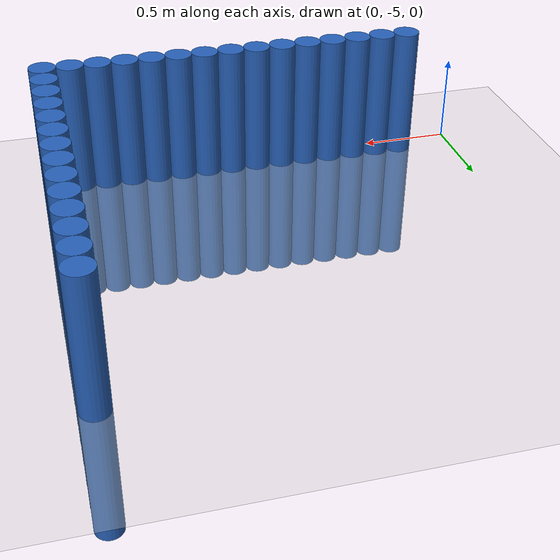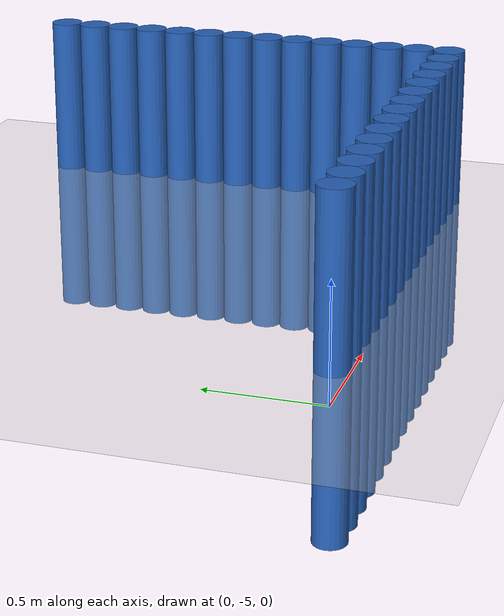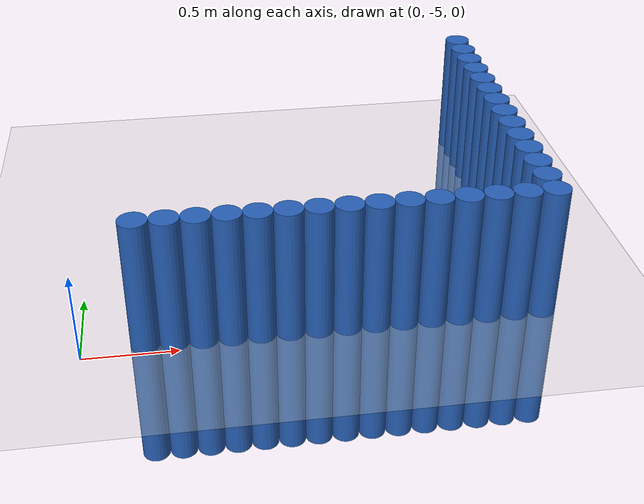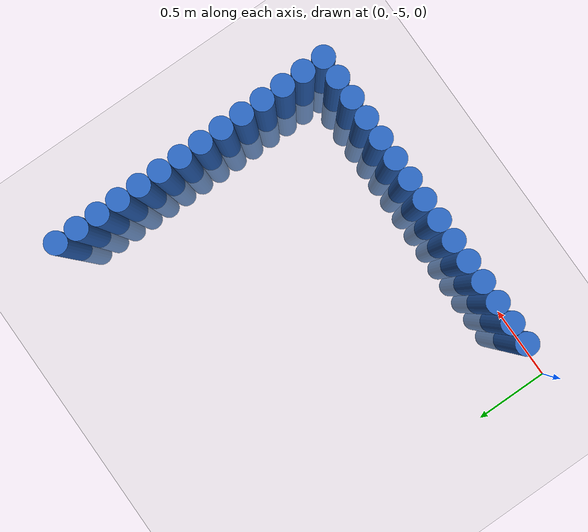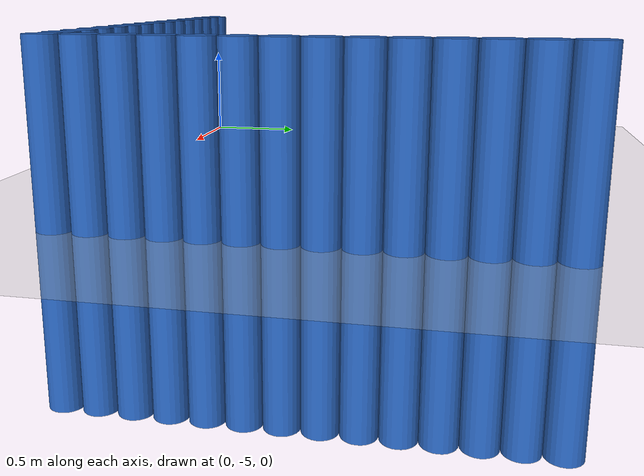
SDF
<sdf version="1.6">
 <world name="default">
  <model name="ground_plane">
   <static>1</static>
   <link name="link">
    <collision name="collision">
     <geometry><plane><normal>0 0 1</normal><size>100 100</size></plane></geometry>
     <surface><friction><ode><mu>100</mu><mu2>50</mu2></ode></friction></surface>
    </collision>
    <visual name="visual">
     <cast_shadows>0</cast_shadows>
     <geometry><plane><normal>0 0 1</normal><size>100 100</size></plane></geometry>
     <material>
      <script><uri>file://media/materials/scripts/gazebo.material</uri><name>Gazebo/Grey</name></script>
     </material>
    </visual>
   </link>
  </model>
  <model name="unit_cylinder_0">
   <static>1</static>
   <pose>2.425000 -4.925000 0.000000 0.000000 0.000000 0.000000</pose>
   <link name="link">
    <inertial>
     <mass>1</mass>
     <inertia><ixx>0.145833</ixx><ixy>0</ixy><ixz>0</ixz><iyy>0.145833</iyy><iyz>0</iyz><izz>0.125</izz></inertia>
    </inertial>
    <collision name="collision">
     <geometry><cylinder><radius>0.075000</radius><length>1.5</length></cylinder></geometry>
    </collision>
    <visual name="visual">
     <geometry><cylinder><radius>0.075000</radius><length>1.5</length></cylinder></geometry>
     <material>
      <ambient>0.152000 0.379000 0.720000 1</ambient>
      <diffuse>0.152000 0.379000 0.720000 1</diffuse>
     </material>
     <material>
      <script><name>Gazebo/Grey</name><uri>file://media/materials/scripts/gazebo.material</uri></script>
     </material>
    </visual>
   </link>
  </model>
  <model name="unit_cylinder_1">
   <static>1</static>
   <pose>2.275000 -4.925000 0.000000 0.000000 0.000000 0.000000</pose>
   <link name="link">
    <inertial>
     <mass>1</mass>
     <inertia><ixx>0.145833</ixx><ixy>0</ixy><ixz>0</ixz><iyy>0.145833</iyy><iyz>0</iyz><izz>0.125</izz></inertia>
    </inertial>
    <collision name="collision">
     <geometry><cylinder><radius>0.075000</radius><length>1.5</length></cylinder></geometry>
    </collision>
    <visual name="visual">
     <geometry><cylinder><radius>0.075000</radius><length>1.5</length></cylinder></geometry>
     <material>
      <ambient>0.152000 0.379000 0.720000 1</ambient>
      <diffuse>0.152000 0.379000 0.720000 1</diffuse>
     </material>
     <material>
      <script><name>Gazebo/Grey</name><uri>file://media/materials/scripts/gazebo.material</uri></script>
     </material>
    </visual>
   </link>
  </model>
  <model name="unit_cylinder_2">
   <static>1</static>
   <pose>2.125000 -4.925000 0.000000 0.000000 0.000000 0.000000</pose>
   <link name="link">
    <inertial>
     <mass>1</mass>
     <inertia><ixx>0.145833</ixx><ixy>0</ixy><ixz>0</ixz><iyy>0.145833</iyy><iyz>0</iyz><izz>0.125</izz></inertia>
    </inertial>
    <collision name="collision">
     <geometry><cylinder><radius>0.075000</radius><length>1.5</length></cylinder></geometry>
    </collision>
    <visual name="visual">
     <geometry><cylinder><radius>0.075000</radius><length>1.5</length></cylinder></geometry>
     <material>
      <ambient>0.152000 0.379000 0.720000 1</ambient>
      <diffuse>0.152000 0.379000 0.720000 1</diffuse>
     </material>
     <material>
      <script><name>Gazebo/Grey</name><uri>file://media/materials/scripts/gazebo.material</uri></script>
     </material>
    </visual>
   </link>
  </model>
  <model name="unit_cylinder_3">
   <static>1</static>
   <pose>1.975000 -4.925000 0.000000 0.000000 0.000000 0.000000</pose>
   <link name="link">
    <inertial>
     <mass>1</mass>
     <inertia><ixx>0.145833</ixx><ixy>0</ixy><ixz>0</ixz><iyy>0.145833</iyy><iyz>0</iyz><izz>0.125</izz></inertia>
    </inertial>
    <collision name="collision">
     <geometry><cylinder><radius>0.075000</radius><length>1.5</length></cylinder></geometry>
    </collision>
    <visual name="visual">
     <geometry><cylinder><radius>0.075000</radius><length>1.5</length></cylinder></geometry>
     <material>
      <ambient>0.152000 0.379000 0.720000 1</ambient>
      <diffuse>0.152000 0.379000 0.720000 1</diffuse>
     </material>
     <material>
      <script><name>Gazebo/Grey</name><uri>file://media/materials/scripts/gazebo.material</uri></script>
     </material>
    </visual>
   </link>
  </model>
  <model name="unit_cylinder_4">
   <static>1</static>
   <pose>1.825000 -4.925000 0.000000 0.000000 0.000000 0.000000</pose>
   <link name="link">
    <inertial>
     <mass>1</mass>
     <inertia><ixx>0.145833</ixx><ixy>0</ixy><ixz>0</ixz><iyy>0.145833</iyy><iyz>0</iyz><izz>0.125</izz></inertia>
    </inertial>
    <collision name="collision">
     <geometry><cylinder><radius>0.075000</radius><length>1.5</length></cylinder></geometry>
    </collision>
    <visual name="visual">
     <geometry><cylinder><radius>0.075000</radius><length>1.5</length></cylinder></geometry>
     <material>
      <ambient>0.152000 0.379000 0.720000 1</ambient>
      <diffuse>0.152000 0.379000 0.720000 1</diffuse>
     </material>
     <material>
      <script><name>Gazebo/Grey</name><uri>file://media/materials/scripts/gazebo.material</uri></script>
     </material>
    </visual>
   </link>
  </model>
  <model name="unit_cylinder_5">
   <static>1</static>
   <pose>1.675000 -4.925000 0.000000 0.000000 0.000000 0.000000</pose>
   <link name="link">
    <inertial>
     <mass>1</mass>
     <inertia><ixx>0.145833</ixx><ixy>0</ixy><ixz>0</ixz><iyy>0.145833</iyy><iyz>0</iyz><izz>0.125</izz></inertia>
    </inertial>
    <collision name="collision">
     <geometry><cylinder><radius>0.075000</radius><length>1.5</length></cylinder></geometry>
    </collision>
    <visual name="visual">
     <geometry><cylinder><radius>0.075000</radius><length>1.5</length></cylinder></geometry>
     <material>
      <ambient>0.152000 0.379000 0.720000 1</ambient>
      <diffuse>0.152000 0.379000 0.720000 1</diffuse>
     </material>
     <material>
      <script><name>Gazebo/Grey</name><uri>file://media/materials/scripts/gazebo.material</uri></script>
     </material>
    </visual>
   </link>
  </model>
  <model name="unit_cylinder_6">
   <static>1</static>
   <pose>1.525000 -4.925000 0.000000 0.000000 0.000000 0.000000</pose>
   <link name="link">
    <inertial>
     <mass>1</mass>
     <inertia><ixx>0.145833</ixx><ixy>0</ixy><ixz>0</ixz><iyy>0.145833</iyy><iyz>0</iyz><izz>0.125</izz></inertia>
    </inertial>
    <collision name="collision">
     <geometry><cylinder><radius>0.075000</radius><length>1.5</length></cylinder></geometry>
    </collision>
    <visual name="visual">
     <geometry><cylinder><radius>0.075000</radius><length>1.5</length></cylinder></geometry>
     <material>
      <ambient>0.152000 0.379000 0.720000 1</ambient>
      <diffuse>0.152000 0.379000 0.720000 1</diffuse>
     </material>
     <material>
      <script><name>Gazebo/Grey</name><uri>file://media/materials/scripts/gazebo.material</uri></script>
     </material>
    </visual>
   </link>
  </model>
  <model name="unit_cylinder_7">
   <static>1</static>
   <pose>1.375000 -4.925000 0.000000 0.000000 0.000000 0.000000</pose>
   <link name="link">
    <inertial>
     <mass>1</mass>
     <inertia><ixx>0.145833</ixx><ixy>0</ixy><ixz>0</ixz><iyy>0.145833</iyy><iyz>0</iyz><izz>0.125</izz></inertia>
    </inertial>
    <collision name="collision">
     <geometry><cylinder><radius>0.075000</radius><length>1.5</length></cylinder></geometry>
    </collision>
    <visual name="visual">
     <geometry><cylinder><radius>0.075000</radius><length>1.5</length></cylinder></geometry>
     <material>
      <ambient>0.152000 0.379000 0.720000 1</ambient>
      <diffuse>0.152000 0.379000 0.720000 1</diffuse>
     </material>
     <material>
      <script><name>Gazebo/Grey</name><uri>file://media/materials/scripts/gazebo.material</uri></script>
     </material>
    </visual>
   </link>
  </model>
  <model name="unit_cylinder_8">
   <static>1</static>
   <pose>1.225000 -4.925000 0.000000 0.000000 0.000000 0.000000</pose>
   <link name="link">
    <inertial>
     <mass>1</mass>
     <inertia><ixx>0.145833</ixx><ixy>0</ixy><ixz>0</ixz><iyy>0.145833</iyy><iyz>0</iyz><izz>0.125</izz></inertia>
    </inertial>
    <collision name="collision">
     <geometry><cylinder><radius>0.075000</radius><length>1.5</length></cylinder></geometry>
    </collision>
    <visual name="visual">
     <geometry><cylinder><radius>0.075000</radius><length>1.5</length></cylinder></geometry>
     <material>
      <ambient>0.152000 0.379000 0.720000 1</ambient>
      <diffuse>0.152000 0.379000 0.720000 1</diffuse>
     </material>
     <material>
      <script><name>Gazebo/Grey</name><uri>file://media/materials/scripts/gazebo.material</uri></script>
     </material>
    </visual>
   </link>
  </model>
  <model name="unit_cylinder_9">
   <static>1</static>
   <pose>1.075000 -4.925000 0.000000 0.000000 0.000000 0.000000</pose>
   <link name="link">
    <inertial>
     <mass>1</mass>
     <inertia><ixx>0.145833</ixx><ixy>0</ixy><ixz>0</ixz><iyy>0.145833</iyy><iyz>0</iyz><izz>0.125</izz></inertia>
    </inertial>
    <collision name="collision">
     <geometry><cylinder><radius>0.075000</radius><length>1.5</length></cylinder></geometry>
    </collision>
    <visual name="visual">
     <geometry><cylinder><radius>0.075000</radius><length>1.5</length></cylinder></geometry>
     <material>
      <ambient>0.152000 0.379000 0.720000 1</ambient>
      <diffuse>0.152000 0.379000 0.720000 1</diffuse>
     </material>
     <material>
      <script><name>Gazebo/Grey</name><uri>file://media/materials/scripts/gazebo.material</uri></script>
     </material>
    </visual>
   </link>
  </model>
  <model name="unit_cylinder_10">
   <static>1</static>
   <pose>0.925000 -4.925000 0.000000 0.000000 0.000000 0.000000</pose>
   <link name="link">
    <inertial>
     <mass>1</mass>
     <inertia><ixx>0.145833</ixx><ixy>0</ixy><ixz>0</ixz><iyy>0.145833</iyy><iyz>0</iyz><izz>0.125</izz></inertia>
    </inertial>
    <collision name="collision">
     <geometry><cylinder><radius>0.075000</radius><length>1.5</length></cylinder></geometry>
    </collision>
    <visual name="visual">
     <geometry><cylinder><radius>0.075000</radius><length>1.5</length></cylinder></geometry>
     <material>
      <ambient>0.152000 0.379000 0.720000 1</ambient>
      <diffuse>0.152000 0.379000 0.720000 1</diffuse>
     </material>
     <material>
      <script><name>Gazebo/Grey</name><uri>file://media/materials/scripts/gazebo.material</uri></script>
     </material>
    </visual>
   </link>
  </model>
  <model name="unit_cylinder_11">
   <static>1</static>
   <pose>0.775000 -4.925000 0.000000 0.000000 0.000000 0.000000</pose>
   <link name="link">
    <inertial>
     <mass>1</mass>
     <inertia><ixx>0.145833</ixx><ixy>0</ixy><ixz>0</ixz><iyy>0.145833</iyy><iyz>0</iyz><izz>0.125</izz></inertia>
    </inertial>
    <collision name="collision">
     <geometry><cylinder><radius>0.075000</radius><length>1.5</length></cylinder></geometry>
    </collision>
    <visual name="visual">
     <geometry><cylinder><radius>0.075000</radius><length>1.5</length></cylinder></geometry>
     <material>
      <ambient>0.152000 0.379000 0.720000 1</ambient>
      <diffuse>0.152000 0.379000 0.720000 1</diffuse>
     </material>
     <material>
      <script><name>Gazebo/Grey</name><uri>file://media/materials/scripts/gazebo.material</uri></script>
     </material>
    </visual>
   </link>
  </model>
  <model name="unit_cylinder_12">
   <static>1</static>
   <pose>0.625000 -4.925000 0.000000 0.000000 0.000000 0.000000</pose>
   <link name="link">
    <inertial>
     <mass>1</mass>
     <inertia><ixx>0.145833</ixx><ixy>0</ixy><ixz>0</ixz><iyy>0.145833</iyy><iyz>0</iyz><izz>0.125</izz></inertia>
    </inertial>
    <collision name="collision">
     <geometry><cylinder><radius>0.075000</radius><length>1.5</length></cylinder></geometry>
    </collision>
    <visual name="visual">
     <geometry><cylinder><radius>0.075000</radius><length>1.5</length></cylinder></geometry>
     <material>
      <ambient>0.152000 0.379000 0.720000 1</ambient>
      <diffuse>0.152000 0.379000 0.720000 1</diffuse>
     </material>
     <material>
      <script><name>Gazebo/Grey</name><uri>file://media/materials/scripts/gazebo.material</uri></script>
     </material>
    </visual>
   </link>
  </model>
  <model name="unit_cylinder_13">
   <static>1</static>
   <pose>0.475000 -4.925000 0.000000 0.000000 0.000000 0.000000</pose>
   <link name="link">
    <inertial>
     <mass>1</mass>
     <inertia><ixx>0.145833</ixx><ixy>0</ixy><ixz>0</ixz><iyy>0.145833</iyy><iyz>0</iyz><izz>0.125</izz></inertia>
    </inertial>
    <collision name="collision">
     <geometry><cylinder><radius>0.075000</radius><length>1.5</length></cylinder></geometry>
    </collision>
    <visual name="visual">
     <geometry><cylinder><radius>0.075000</radius><length>1.5</length></cylinder></geometry>
     <material>
      <ambient>0.152000 0.379000 0.720000 1</ambient>
      <diffuse>0.152000 0.379000 0.720000 1</diffuse>
     </material>
     <material>
      <script><name>Gazebo/Grey</name><uri>file://media/materials/scripts/gazebo.material</uri></script>
     </material>
    </visual>
   </link>
  </model>
  <model name="unit_cylinder_14">
   <static>1</static>
   <pose>0.325000 -4.925000 0.000000 0.000000 0.000000 0.000000</pose>
   <link name="link">
    <inertial>
     <mass>1</mass>
     <inertia><ixx>0.145833</ixx><ixy>0</ixy><ixz>0</ixz><iyy>0.145833</iyy><iyz>0</iyz><izz>0.125</izz></inertia>
    </inertial>
    <collision name="collision">
     <geometry><cylinder><radius>0.075000</radius><length>1.5</length></cylinder></geometry>
    </collision>
    <visual name="visual">
     <geometry><cylinder><radius>0.075000</radius><length>1.5</length></cylinder></geometry>
     <material>
      <ambient>0.152000 0.379000 0.720000 1</ambient>
      <diffuse>0.152000 0.379000 0.720000 1</diffuse>
     </material>
     <material>
      <script><name>Gazebo/Grey</name><uri>file://media/materials/scripts/gazebo.material</uri></script>
     </material>
    </visual>
   </link>
  </model>
  <model name="unit_cylinder_30">
   <static>1</static>
   <pose>2.425000 -4.775000 0.000000 0.000000 0.000000 0.000000</pose>
   <link name="link">
    <inertial>
     <mass>1</mass>
     <inertia><ixx>0.145833</ixx><ixy>0</ixy><ixz>0</ixz><iyy>0.145833</iyy><iyz>0</iyz><izz>0.125</izz></inertia>
    </inertial>
    <collision name="collision">
     <geometry><cylinder><radius>0.075000</radius><length>1.5</length></cylinder></geometry>
    </collision>
    <visual name="visual">
     <geometry><cylinder><radius>0.075000</radius><length>1.5</length></cylinder></geometry>
     <material>
      <ambient>0.152000 0.379000 0.720000 1</ambient>
      <diffuse>0.152000 0.379000 0.720000 1</diffuse>
     </material>
     <material>
      <script><name>Gazebo/Grey</name><uri>file://media/materials/scripts/gazebo.material</uri></script>
     </material>
    </visual>
   </link>
  </model>
  <model name="unit_cylinder_32">
   <static>1</static>
   <pose>2.425000 -4.625000 0.000000 0.000000 0.000000 0.000000</pose>
   <link name="link">
    <inertial>
     <mass>1</mass>
     <inertia><ixx>0.145833</ixx><ixy>0</ixy><ixz>0</ixz><iyy>0.145833</iyy><iyz>0</iyz><izz>0.125</izz></inertia>
    </inertial>
    <collision name="collision">
     <geometry><cylinder><radius>0.075000</radius><length>1.5</length></cylinder></geometry>
    </collision>
    <visual name="visual">
     <geometry><cylinder><radius>0.075000</radius><length>1.5</length></cylinder></geometry>
     <material>
      <ambient>0.152000 0.379000 0.720000 1</ambient>
      <diffuse>0.152000 0.379000 0.720000 1</diffuse>
     </material>
     <material>
      <script><name>Gazebo/Grey</name><uri>file://media/materials/scripts/gazebo.material</uri></script>
     </material>
    </visual>
   </link>
  </model>
  <model name="unit_cylinder_34">
   <static>1</static>
   <pose>2.425000 -4.475000 0.000000 0.000000 0.000000 0.000000</pose>
   <link name="link">
    <inertial>
     <mass>1</mass>
     <inertia><ixx>0.145833</ixx><ixy>0</ixy><ixz>0</ixz><iyy>0.145833</iyy><iyz>0</iyz><izz>0.125</izz></inertia>
    </inertial>
    <collision name="collision">
     <geometry><cylinder><radius>0.075000</radius><length>1.5</length></cylinder></geometry>
    </collision>
    <visual name="visual">
     <geometry><cylinder><radius>0.075000</radius><length>1.5</length></cylinder></geometry>
     <material>
      <ambient>0.152000 0.379000 0.720000 1</ambient>
      <diffuse>0.152000 0.379000 0.720000 1</diffuse>
     </material>
     <material>
      <script><name>Gazebo/Grey</name><uri>file://media/materials/scripts/gazebo.material</uri></script>
     </material>
    </visual>
   </link>
  </model>
  <model name="unit_cylinder_36">
   <static>1</static>
   <pose>2.425000 -4.325000 0.000000 0.000000 0.000000 0.000000</pose>
   <link name="link">
    <inertial>
     <mass>1</mass>
     <inertia><ixx>0.145833</ixx><ixy>0</ixy><ixz>0</ixz><iyy>0.145833</iyy><iyz>0</iyz><izz>0.125</izz></inertia>
    </inertial>
    <collision name="collision">
     <geometry><cylinder><radius>0.075000</radius><length>1.5</length></cylinder></geometry>
    </collision>
    <visual name="visual">
     <geometry><cylinder><radius>0.075000</radius><length>1.5</length></cylinder></geometry>
     <material>
      <ambient>0.152000 0.379000 0.720000 1</ambient>
      <diffuse>0.152000 0.379000 0.720000 1</diffuse>
     </material>
     <material>
      <script><name>Gazebo/Grey</name><uri>file://media/materials/scripts/gazebo.material</uri></script>
     </material>
    </visual>
   </link>
  </model>
  <model name="unit_cylinder_38">
   <static>1</static>
   <pose>2.425000 -4.175000 0.000000 0.000000 0.000000 0.000000</pose>
   <link name="link">
    <inertial>
     <mass>1</mass>
     <inertia><ixx>0.145833</ixx><ixy>0</ixy><ixz>0</ixz><iyy>0.145833</iyy><iyz>0</iyz><izz>0.125</izz></inertia>
    </inertial>
    <collision name="collision">
     <geometry><cylinder><radius>0.075000</radius><length>1.5</length></cylinder></geometry>
    </collision>
    <visual name="visual">
     <geometry><cylinder><radius>0.075000</radius><length>1.5</length></cylinder></geometry>
     <material>
      <ambient>0.152000 0.379000 0.720000 1</ambient>
      <diffuse>0.152000 0.379000 0.720000 1</diffuse>
     </material>
     <material>
      <script><name>Gazebo/Grey</name><uri>file://media/materials/scripts/gazebo.material</uri></script>
     </material>
    </visual>
   </link>
  </model>
  <model name="unit_cylinder_40">
   <static>1</static>
   <pose>2.425000 -4.025000 0.000000 0.000000 0.000000 0.000000</pose>
   <link name="link">
    <inertial>
     <mass>1</mass>
     <inertia><ixx>0.145833</ixx><ixy>0</ixy><ixz>0</ixz><iyy>0.145833</iyy><iyz>0</iyz><izz>0.125</izz></inertia>
    </inertial>
    <collision name="collision">
     <geometry><cylinder><radius>0.075000</radius><length>1.5</length></cylinder></geometry>
    </collision>
    <visual name="visual">
     <geometry><cylinder><radius>0.075000</radius><length>1.5</length></cylinder></geometry>
     <material>
      <ambient>0.152000 0.379000 0.720000 1</ambient>
      <diffuse>0.152000 0.379000 0.720000 1</diffuse>
     </material>
     <material>
      <script><name>Gazebo/Grey</name><uri>file://media/materials/scripts/gazebo.material</uri></script>
     </material>
    </visual>
   </link>
  </model>
  <model name="unit_cylinder_42">
   <static>1</static>
   <pose>2.425000 -3.875000 0.000000 0.000000 0.000000 0.000000</pose>
   <link name="link">
    <inertial>
     <mass>1</mass>
     <inertia><ixx>0.145833</ixx><ixy>0</ixy><ixz>0</ixz><iyy>0.145833</iyy><iyz>0</iyz><izz>0.125</izz></inertia>
    </inertial>
    <collision name="collision">
     <geometry><cylinder><radius>0.075000</radius><length>1.5</length></cylinder></geometry>
    </collision>
    <visual name="visual">
     <geometry><cylinder><radius>0.075000</radius><length>1.5</length></cylinder></geometry>
     <material>
      <ambient>0.152000 0.379000 0.720000 1</ambient>
      <diffuse>0.152000 0.379000 0.720000 1</diffuse>
     </material>
     <material>
      <script><name>Gazebo/Grey</name><uri>file://media/materials/scripts/gazebo.material</uri></script>
     </material>
    </visual>
   </link>
  </model>
  <model name="unit_cylinder_44">
   <static>1</static>
   <pose>2.425000 -3.725000 0.000000 0.000000 0.000000 0.000000</pose>
   <link name="link">
    <inertial>
     <mass>1</mass>
     <inertia><ixx>0.145833</ixx><ixy>0</ixy><ixz>0</ixz><iyy>0.145833</iyy><iyz>0</iyz><izz>0.125</izz></inertia>
    </inertial>
    <collision name="collision">
     <geometry><cylinder><radius>0.075000</radius><length>1.5</length></cylinder></geometry>
    </collision>
    <visual name="visual">
     <geometry><cylinder><radius>0.075000</radius><length>1.5</length></cylinder></geometry>
     <material>
      <ambient>0.152000 0.379000 0.720000 1</ambient>
      <diffuse>0.152000 0.379000 0.720000 1</diffuse>
     </material>
     <material>
      <script><name>Gazebo/Grey</name><uri>file://media/materials/scripts/gazebo.material</uri></script>
     </material>
    </visual>
   </link>
  </model>
  <model name="unit_cylinder_46">
   <static>1</static>
   <pose>2.425000 -3.575000 0.000000 0.000000 0.000000 0.000000</pose>
   <link name="link">
    <inertial>
     <mass>1</mass>
     <inertia><ixx>0.145833</ixx><ixy>0</ixy><ixz>0</ixz><iyy>0.145833</iyy><iyz>0</iyz><izz>0.125</izz></inertia>
    </inertial>
    <collision name="collision">
     <geometry><cylinder><radius>0.075000</radius><length>1.5</length></cylinder></geometry>
    </collision>
    <visual name="visual">
     <geometry><cylinder><radius>0.075000</radius><length>1.5</length></cylinder></geometry>
     <material>
      <ambient>0.152000 0.379000 0.720000 1</ambient>
      <diffuse>0.152000 0.379000 0.720000 1</diffuse>
     </material>
     <material>
      <script><name>Gazebo/Grey</name><uri>file://media/materials/scripts/gazebo.material</uri></script>
     </material>
    </visual>
   </link>
  </model>
  <model name="unit_cylinder_48">
   <static>1</static>
   <pose>2.425000 -3.425000 0.000000 0.000000 0.000000 0.000000</pose>
   <link name="link">
    <inertial>
     <mass>1</mass>
     <inertia><ixx>0.145833</ixx><ixy>0</ixy><ixz>0</ixz><iyy>0.145833</iyy><iyz>0</iyz><izz>0.125</izz></inertia>
    </inertial>
    <collision name="collision">
     <geometry><cylinder><radius>0.075000</radius><length>1.5</length></cylinder></geometry>
    </collision>
    <visual name="visual">
     <geometry><cylinder><radius>0.075000</radius><length>1.5</length></cylinder></geometry>
     <material>
      <ambient>0.152000 0.379000 0.720000 1</ambient>
      <diffuse>0.152000 0.379000 0.720000 1</diffuse>
     </material>
     <material>
      <script><name>Gazebo/Grey</name><uri>file://media/materials/scripts/gazebo.material</uri></script>
     </material>
    </visual>
   </link>
  </model>
  <model name="unit_cylinder_50">
   <static>1</static>
   <pose>2.425000 -3.275000 0.000000 0.000000 0.000000 0.000000</pose>
   <link name="link">
    <inertial>
     <mass>1</mass>
     <inertia><ixx>0.145833</ixx><ixy>0</ixy><ixz>0</ixz><iyy>0.145833</iyy><iyz>0</iyz><izz>0.125</izz></inertia>
    </inertial>
    <collision name="collision">
     <geometry><cylinder><radius>0.075000</radius><length>1.5</length></cylinder></geometry>
    </collision>
    <visual name="visual">
     <geometry><cylinder><radius>0.075000</radius><length>1.5</length></cylinder></geometry>
     <material>
      <ambient>0.152000 0.379000 0.720000 1</ambient>
      <diffuse>0.152000 0.379000 0.720000 1</diffuse>
     </material>
     <material>
      <script><name>Gazebo/Grey</name><uri>file://media/materials/scripts/gazebo.material</uri></script>
     </material>
    </visual>
   </link>
  </model>
  <model name="unit_cylinder_52">
   <static>1</static>
   <pose>2.425000 -3.125000 0.000000 0.000000 0.000000 0.000000</pose>
   <link name="link">
    <inertial>
     <mass>1</mass>
     <inertia><ixx>0.145833</ixx><ixy>0</ixy><ixz>0</ixz><iyy>0.145833</iyy><iyz>0</iyz><izz>0.125</izz></inertia>
    </inertial>
    <collision name="collision">
     <geometry><cylinder><radius>0.075000</radius><length>1.5</length></cylinder></geometry>
    </collision>
    <visual name="visual">
     <geometry><cylinder><radius>0.075000</radius><length>1.5</length></cylinder></geometry>
     <material>
      <ambient>0.152000 0.379000 0.720000 1</ambient>
      <diffuse>0.152000 0.379000 0.720000 1</diffuse>
     </material>
     <material>
      <script><name>Gazebo/Grey</name><uri>file://media/materials/scripts/gazebo.material</uri></script>
     </material>
    </visual>
   </link>
  </model>
  <model name="unit_cylinder_54">
   <static>1</static>
   <pose>2.425000 -2.975000 0.000000 0.000000 0.000000 0.000000</pose>
   <link name="link">
    <inertial>
     <mass>1</mass>
     <inertia><ixx>0.145833</ixx><ixy>0</ixy><ixz>0</ixz><iyy>0.145833</iyy><iyz>0</iyz><izz>0.125</izz></inertia>
    </inertial>
    <collision name="collision">
     <geometry><cylinder><radius>0.075000</radius><length>1.5</length></cylinder></geometry>
    </collision>
    <visual name="visual">
     <geometry><cylinder><radius>0.075000</radius><length>1.5</length></cylinder></geometry>
     <material>
      <ambient>0.152000 0.379000 0.720000 1</ambient>
      <diffuse>0.152000 0.379000 0.720000 1</diffuse>
     </material>
     <material>
      <script><name>Gazebo/Grey</name><uri>file://media/materials/scripts/gazebo.material</uri></script>
     </material>
    </visual>
   </link>
  </model>
 </world>
</sdf>
